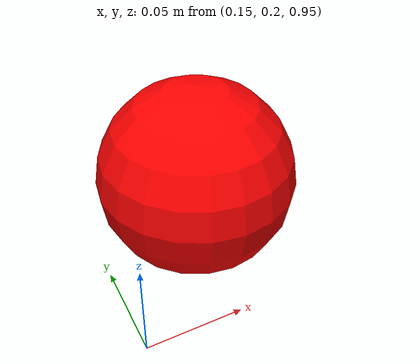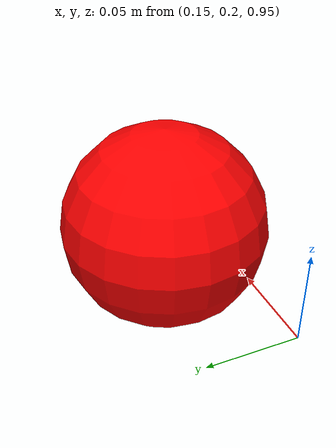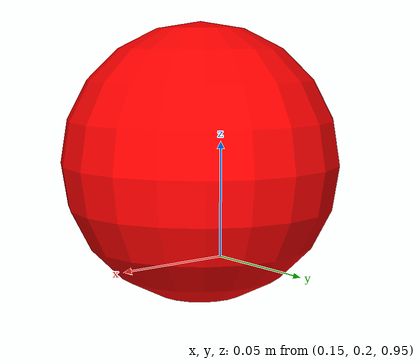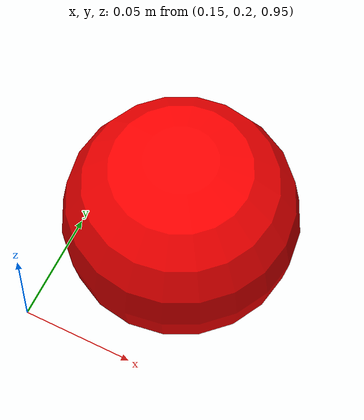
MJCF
<?xml version="1.0" encoding="utf-8"?>
<mujoco model="example">
	<compiler angle="radian"/>
    <asset>
		<texture builtin="gradient" height="512" name="texplane" rgb1="0.32 0.12 0.23" rgb2="0.19 0.11 0.16" type="2d" width="512"/>
		<material name="Floor" texture="texplane"/>
	</asset>
	<worldbody>
        <light diffuse="1.0 1.0 1.0" dir="0.48 0.39 -0.34" directional="true" pos="4.82 3.75 5.12"/>
		<light diffuse="1.0 0.9 0.9" dir="-0.18 -0.03 -0.48" directional="true" pos="1.92 -0.89 4.69"/>
		<light diffuse="1.0 1.0 1.0" dir="-0.12 -0.02 -0.39" directional="true" pos="0.89 -1.65 3.38"/>
		<geom material="Floor" name="floor" pos="0 0 -0.05" size="5.0 5.0 0.05" type="plane"/>

        <geom name="object" pos="0.2 0.25 1.0" size="0.05" type="sphere" rgba="1 0 0 1" />
		<camera fovy="90" mode="fixed" name="camera1" pos="0.7 0.0 1.5" euler="0.2 1.2 1.57"/>

    </worldbody>
</mujoco>
